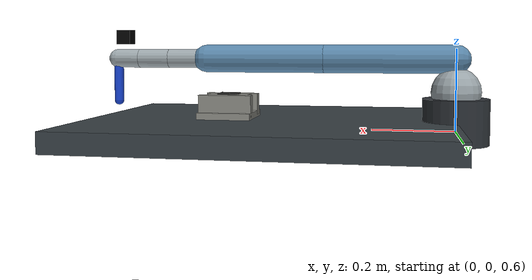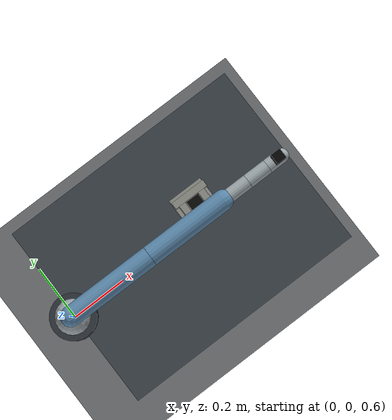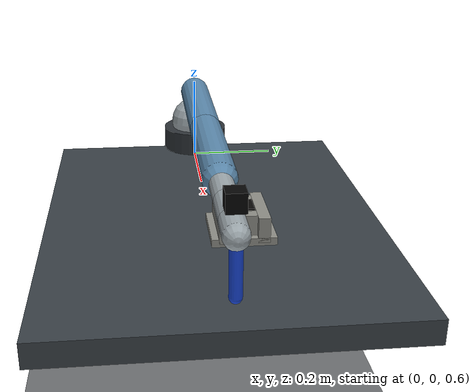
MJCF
<mujoco model="ur5_peg_in_hole">
  <compiler angle="radian" autolimits="true"/>
  <option timestep="0.002" gravity="0 0 -9.81" integrator="RK4"/>

  <default>
    <joint damping="2.0" armature="0.02" limited="true"/>
    <geom friction="1.0 0.005 0.0001" solref="0.01 1" solimp="0.95 0.95 0.001"/>
    <default class="arm">
      <geom type="capsule" size="0.035" rgba="0.36 0.54 0.68 1" density="650"/>
    </default>
    <default class="wrist">
      <geom type="capsule" size="0.024" rgba="0.62 0.66 0.68 1" density="650"/>
    </default>
  </default>

  <asset>
    <material name="mat_floor" rgba="0.42 0.43 0.44 1"/>
    <material name="mat_table" rgba="0.22 0.25 0.27 1"/>
    <material name="mat_hole" rgba="0.55 0.55 0.52 1"/>
    <material name="mat_hole_cavity" rgba="0.035 0.032 0.028 1"/>
    <material name="mat_peg" rgba="0.1 0.28 0.85 1"/>
    <material name="mat_camera" rgba="0.02 0.02 0.02 1"/>
    <mesh name="peg_hex_mesh" vertex="-0.00600000 0.01039230 0.05500000 -0.01200000 0.00000000 0.05500000 -0.00600000 -0.01039230 0.05500000 0.00600000 -0.01039230 0.05500000 0.01200000 -0.00000000 0.05500000 0.00600000 0.01039230 0.05500000 -0.00600000 0.01039230 -0.05500000 -0.01200000 0.00000000 -0.05500000 -0.00600000 -0.01039230 -0.05500000 0.00600000 -0.01039230 -0.05500000 0.01200000 -0.00000000 -0.05500000 0.00600000 0.01039230 -0.05500000" face="0 1 2 0 2 3 0 3 4 0 4 5 6 8 7 6 9 8 6 10 9 6 11 10 0 1 7 0 7 6 1 2 8 1 8 7 2 3 9 2 9 8 3 4 10 3 10 9 4 5 11 4 11 10 5 0 6 5 6 11"/>
    <mesh name="peg_triangle_mesh" vertex="-0.01039230 0.00600000 0.05500000 -0.00000000 -0.01200000 0.05500000 0.01039230 0.00600000 0.05500000 -0.01039230 0.00600000 -0.05500000 -0.00000000 -0.01200000 -0.05500000 0.01039230 0.00600000 -0.05500000" face="0 1 2 3 5 4 0 1 4 0 4 3 1 2 5 1 5 4 2 0 3 2 3 5"/>
  </asset>

  <worldbody>
    <light name="key_light" pos="0.2 -0.5 1.7" dir="-0.2 0.4 -1" diffuse="0.9 0.9 0.85"/>
    <light name="fill_light" pos="0.8 0.6 1.2" dir="-0.5 -0.4 -1" diffuse="0.35 0.38 0.42"/>
    <camera name="overview" pos="1.05 -0.85 1.05" xyaxes="0.65 0.76 0 -0.32 0.27 0.91" fovy="45"/>

    <geom name="floor" type="plane" size="2 2 0.02" material="mat_floor"/>
    <geom name="table_top" type="box" pos="0.45 0 0.60" size="0.45 0.35 0.025" material="mat_table"/>

    <body name="hole_body" mocap="true" pos="0.55 0.05 0.65">
      <geom name="hole_plate" type="box" pos="0 0 -0.012" size="0.065 0.065 0.008" material="mat_hole"/>
      <geom name="hole_cavity_visual" type="box" pos="0 0 0.040" size="0.024 0.024 0.0015" material="mat_hole_cavity" rgba="0.035 0.032 0.028 1" contype="0" conaffinity="0"/>
      <geom name="hole_north" type="box" pos="0 0.039 0.012" size="0.065 0.012 0.026" material="mat_hole"/>
      <geom name="hole_south" type="box" pos="0 -0.039 0.012" size="0.065 0.012 0.026" material="mat_hole"/>
      <geom name="hole_east" type="box" pos="0.039 0 0.012" size="0.012 0.027 0.026" material="mat_hole"/>
      <geom name="hole_west" type="box" pos="-0.039 0 0.012" size="0.012 0.027 0.026" material="mat_hole"/>
      <geom name="hole_aux_0" type="box" pos="0 0 -1" size="0.001 0.001 0.001" material="mat_hole" contype="0" conaffinity="0" rgba="0 0 0 0"/>
      <geom name="hole_aux_1" type="box" pos="0 0 -1" size="0.001 0.001 0.001" material="mat_hole" contype="0" conaffinity="0" rgba="0 0 0 0"/>
      <geom name="hole_aux_2" type="box" pos="0 0 -1" size="0.001 0.001 0.001" material="mat_hole" contype="0" conaffinity="0" rgba="0 0 0 0"/>
      <geom name="hole_aux_3" type="box" pos="0 0 -1" size="0.001 0.001 0.001" material="mat_hole" contype="0" conaffinity="0" rgba="0 0 0 0"/>
      <geom name="hole_aux_4" type="box" pos="0 0 -1" size="0.001 0.001 0.001" material="mat_hole" contype="0" conaffinity="0" rgba="0 0 0 0"/>
      <geom name="hole_aux_5" type="box" pos="0 0 -1" size="0.001 0.001 0.001" material="mat_hole" contype="0" conaffinity="0" rgba="0 0 0 0"/>
      <geom name="hole_aux_6" type="box" pos="0 0 -1" size="0.001 0.001 0.001" material="mat_hole" contype="0" conaffinity="0" rgba="0 0 0 0"/>
      <geom name="hole_aux_7" type="box" pos="0 0 -1" size="0.001 0.001 0.001" material="mat_hole" contype="0" conaffinity="0" rgba="0 0 0 0"/>
      <geom name="hole_polygon_visual_0" type="box" pos="0 0 -1" size="0.001 0.001 0.001" material="mat_hole" contype="0" conaffinity="0" rgba="0 0 0 0"/>
      <geom name="hole_polygon_visual_1" type="box" pos="0 0 -1" size="0.001 0.001 0.001" material="mat_hole" contype="0" conaffinity="0" rgba="0 0 0 0"/>
      <geom name="hole_polygon_visual_2" type="box" pos="0 0 -1" size="0.001 0.001 0.001" material="mat_hole" contype="0" conaffinity="0" rgba="0 0 0 0"/>
      <geom name="hole_polygon_visual_3" type="box" pos="0 0 -1" size="0.001 0.001 0.001" material="mat_hole" contype="0" conaffinity="0" rgba="0 0 0 0"/>
      <geom name="hole_polygon_visual_4" type="box" pos="0 0 -1" size="0.001 0.001 0.001" material="mat_hole" contype="0" conaffinity="0" rgba="0 0 0 0"/>
      <geom name="hole_polygon_visual_5" type="box" pos="0 0 -1" size="0.001 0.001 0.001" material="mat_hole" contype="0" conaffinity="0" rgba="0 0 0 0"/>
      <site name="hole_site" pos="0 0 0" size="0.008" rgba="0.9 0.1 0.1 1"/>
      <camera name="hole_top" pos="0 0 0.20" xyaxes="1 0 0 0 1 0" fovy="35"/>
    </body>

    <body name="robot_base" pos="0 0 0.625" gravcomp="1">
      <geom name="base_geom" type="cylinder" size="0.08 0.055" rgba="0.18 0.2 0.22 1" density="900"/>

      <body name="shoulder_pan_link" pos="0 0 0.07" gravcomp="1">
        <joint name="shoulder_pan" type="hinge" axis="0 0 1" range="-3.14159 3.14159"/>
        <geom name="shoulder_geom" type="sphere" size="0.06" rgba="0.62 0.66 0.68 1" density="700"/>

        <body name="upper_arm_link" pos="0 0 0.08" gravcomp="1">
          <joint name="shoulder_lift" type="hinge" axis="0 1 0" range="-2.8 2.8"/>
          <geom name="upper_arm_geom" class="arm" fromto="0 0 0 0.32 0 0"/>

          <body name="forearm_link" pos="0.32 0 0" gravcomp="1">
            <joint name="elbow" type="hinge" axis="0 1 0" range="-2.8 2.8"/>
            <geom name="forearm_geom" class="arm" fromto="0 0 0 0.30 0 0"/>

            <body name="wrist_1_link" pos="0.30 0 0" gravcomp="1">
              <joint name="wrist_1" type="hinge" axis="0 1 0" range="-3.14159 3.14159"/>
              <geom name="wrist_1_geom" class="wrist" fromto="0 0 0 0.10 0 0"/>

              <body name="wrist_2_link" pos="0.10 0 0" gravcomp="1">
                <joint name="wrist_2" type="hinge" axis="1 0 0" range="-3.14159 3.14159"/>
                <geom name="wrist_2_geom" class="wrist" fromto="0 0 0 0.08 0 0"/>

                <body name="wrist_3_link" pos="0.08 0 0" gravcomp="1">
                  <joint name="wrist_3" type="hinge" axis="0 0 1" range="-3.14159 3.14159"/>
                  <geom name="wrist_3_geom" class="wrist" fromto="0 0 0 0.06 0 0"/>

                  <body name="tool0" pos="0.06 0 0" gravcomp="1">
                    <geom name="camera_geom" type="box" pos="-0.02 0 0.055" size="0.018 0.018 0.018" material="mat_camera" density="200"/>
                    <geom name="peg_geom" type="capsule" fromto="0 0 0 0 0 -0.11" size="0.012" material="mat_peg" density="780"/>
                    <site name="eef_site" pos="0 0 0" size="0.01" rgba="0 0.8 0.2 1"/>
                    <site name="peg_tip" pos="0 0 -0.11" size="0.008" rgba="0.1 0.9 0.1 1"/>
                    <camera name="wrist_cam" pos="-0.03 0.06 0.10" fovy="100"/>
                  </body>
                </body>
              </body>
            </body>
          </body>
        </body>
      </body>
    </body>
  </worldbody>

  <actuator>
    <position name="shoulder_pan_ctrl" joint="shoulder_pan" kp="600" ctrlrange="-3.14159 3.14159"/>
    <position name="shoulder_lift_ctrl" joint="shoulder_lift" kp="700" ctrlrange="-2.8 2.8"/>
    <position name="elbow_ctrl" joint="elbow" kp="650" ctrlrange="-2.8 2.8"/>
    <position name="wrist_1_ctrl" joint="wrist_1" kp="350" ctrlrange="-3.14159 3.14159"/>
    <position name="wrist_2_ctrl" joint="wrist_2" kp="250" ctrlrange="-3.14159 3.14159"/>
    <position name="wrist_3_ctrl" joint="wrist_3" kp="250" ctrlrange="-3.14159 3.14159"/>
  </actuator>
</mujoco>
